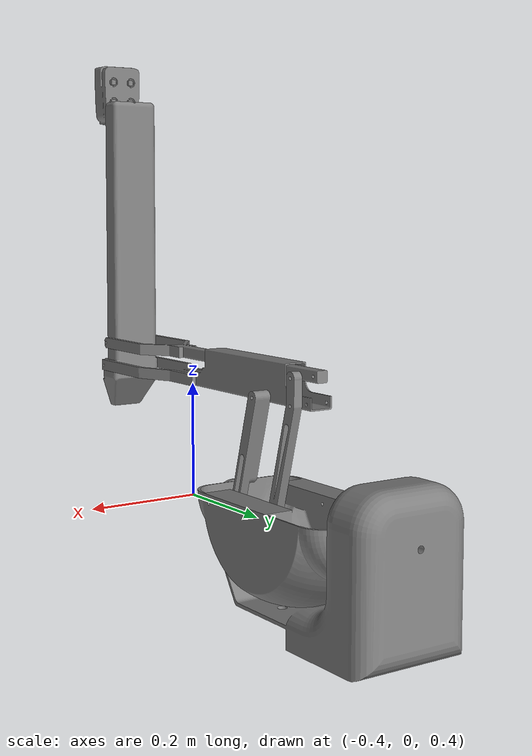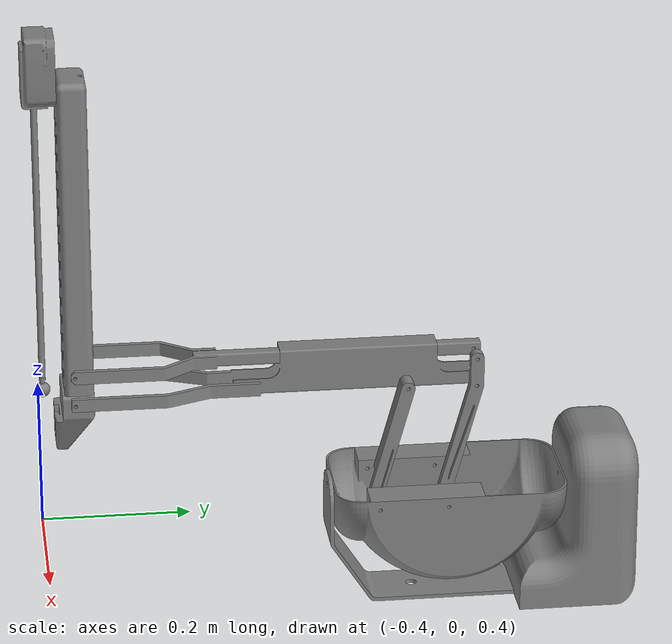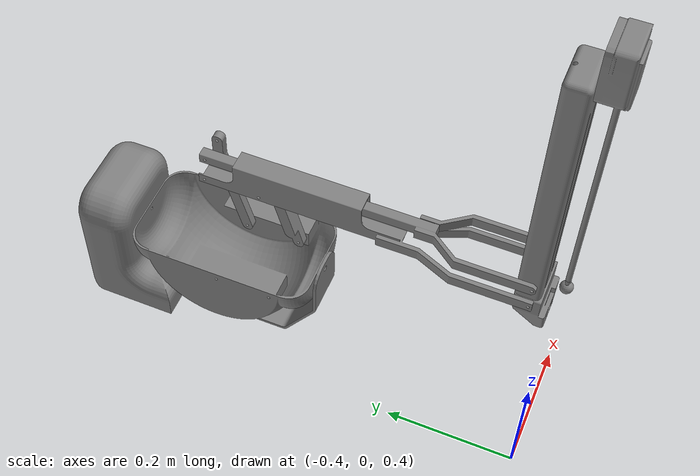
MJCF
<mujoco model="dvrk_psm">
    <compiler angle="radian" meshdir="/home/kallrax/Robotics/MedicalRobotics/dvrk_ws/src/dvrk_psm/meshes/psm/" />
    <size njmax="500" nconmax="100" />
    <option gravity="0 0 0"/>
    <asset>
        <mesh name="psm_base" file="psm_base.stl" />
        <mesh name="outer_yaw" file="outer_yaw.stl" />
        <mesh name="outer_pitch_back" file="outer_pitch_back.stl" />
        <mesh name="outer_pitch_front" file="outer_pitch_front.stl" />
        <mesh name="outer_pitch_bottom" file="outer_pitch_bottom.stl" />
        <mesh name="outer_pitch_top" file="outer_pitch_top.stl" />
        <mesh name="outer_insertion" file="outer_insertion.stl" />
        <mesh name="tool_main" file="tool_main.stl" />
        <mesh name="tool_wrist_link" file="tool_wrist_link.stl" />
        <mesh name="tool_wrist_shaft_link" file="tool_wrist_shaft_link.stl" />
        <mesh name="tool_wrist_sca_link" file="tool_wrist_sca_link.stl" />
        <mesh name="tool_wrist_sca_shaft_link" file="tool_wrist_sca_shaft_link.stl" />
        <mesh name="tool_wrist_sca_link_2" file="tool_wrist_sca_link_2.stl" />
    </asset>
    <worldbody>
        <geom pos="-0.289 0.40788 0.42121" quat="-0.707105 -0.707108 -2.57841e-06 -2.5784e-06" type="mesh" mesh="psm_base" />
        <body name="PSM1_outer_yaw_link" pos="-0.25 0 0.5" quat="-0.5 0.5 0.500002 0.499998">
            <inertial pos="0 0 0" mass="1" diaginertia="0.1 0.1 0.1" />
            <joint name="outer_yaw" pos="0 0 0.6" axis="0 0 1" limited="true" range="-1.5707 1.5707" />
            <geom pos="0.0125 0 0.5265" quat="-2.59734e-06 0.707105 0.707108 -2.59735e-06" type="mesh" contype="0" conaffinity="0" group="0" mesh="outer_yaw" />
            <body name="PSM1_outer_pitch_link" pos="0 0 0" quat="0.499998 -0.5 -0.5 -0.500002">
                <inertial pos="0 0 0" mass="1" diaginertia="0.1 0.1 0.1" />
                <joint name="outer_pitch" pos="0 0 0" axis="0 0 1" limited="true" range="-0.7854 0.7854" />
            </body>
            <body name="PSM1_outer_pitch_back_link" pos="0 0.0295 0.5185" quat="0.499998 -0.5 -0.5 -0.500002">
                <inertial pos="0 0 0" mass="1" diaginertia="0.1 0.1 0.1" />
                <joint name="outer_pitch_1" type="hinge" pos="0 0 0" axis="0 0 1" />
                <geom quat="0.990814 0 0 -0.135229" type="mesh" contype="0" conaffinity="0" group="0" mesh="outer_pitch_back" />
                <body name="PSM1_outer_pitch_bottom_link" pos="0.04178 0.15007 -0.0137">
                    <inertial pos="0 0 0" mass="1" diaginertia="0.1 0.1 0.1" />
                    <joint name="outer_pitch_3" pos="0 0 0" axis="0 0 1" />
                    <geom pos="0.009 0 0" quat="0.707105 0 -0.707108 0" type="mesh" contype="0" conaffinity="0" group="0" mesh="outer_pitch_bottom" />
                    <geom pos="0.009 0 0" quat="0.707105 0 -0.707108 0" type="mesh" mesh="outer_pitch_bottom" />
                    <body name="PSM1_outer_insertion_link" pos="-0.52 0 -0.0155">
                        <inertial pos="0 0 0" mass="1" diaginertia="0.1 0.1 0.1" />
                        <joint name="outer_pitch_5" pos="0 0 0" axis="0 0 1" />
                        <geom pos="0.02528 0.429 0" quat="0.499998 0.500002 -0.5 0.5" type="mesh" mesh="outer_insertion" />
                        <body name="PSM1_tool_main_link" pos="-0.04 0.4318 0" quat="0.707105 0.707108 0 0">
                            <inertial pos="0 0 0" mass="1" diaginertia="0.01 0.01 0.01" />
                            <joint name="outer_insertion" pos="0 0 0" axis="0 0 1" type="slide" limited="true" range="0 0.24" />
                            <geom pos="0 0 0.041" quat="0.707105 0 0 0.707108" type="mesh" mesh="tool_main" />
                            <body name="PSM1_tool_wrist_link" pos="0 0 0.4162">
                                <inertial pos="0 0 0" mass="2" diaginertia="0.02 0.02 0.02" />
                                <joint name="outer_roll" pos="0 0 0" axis="0 0 1" limited="true" range="-2.2689 2.2689" />
                                <geom pos="0 0 -0.0091" quat="0.707105 0 0 0.707108" type="mesh" mesh="tool_wrist_link" />
                                <geom pos="0 0.00401 0" quat="0.707105 0.707108 0 0" type="mesh" mesh="tool_wrist_shaft_link" />
                                <body name="PSM1_tool_wrist_sca_link" pos="0 0 0" quat="0.499998 -0.5 -0.5 -0.500002">
                                    <inertial pos="0 0 0" mass="1" diaginertia="0.01 0.01 0.01" />
                                    <joint name="outer_wrist_pitch" pos="0 0 0" axis="0 0 1" limited="true" range="-1.5707 1.5707" />
                                    <geom pos="0.0051 0.0032 0" quat="-2.59734e-06 -2.59735e-06 0.707105 -0.707108" type="mesh" contype="0" conaffinity="0" group="0" mesh="tool_wrist_sca_link" />
                                    <geom pos="0.0051 0.0032 0" quat="-2.59734e-06 -2.59735e-06 0.707105 -0.707108" type="mesh" mesh="tool_wrist_sca_link" />
                                    <body name="PSM1_tool_wrist_sca_shaft_link" pos="0.0091 0 0" quat="0.499998 -0.5 -0.5 -0.500002">
                                        <site name="endeff" pos="0 0 0" size="0.01"/>
                                        <inertial pos="0 0 0" mass="1" diaginertia="0.01 0.01 0.01" />
                                        <joint name="outer_wrist_yaw" pos="0 0 0" axis="0 0 1" limited="true" range="-1.3963 1.3963" />
                                        <geom pos="0 -0.0002 -0.0025" type="mesh" mesh="tool_wrist_sca_shaft_link" />
                                        <body name="PSM1_tool_wrist_sca_ee_link_0" pos="0 0 0">
                                            <inertial pos="0 0 0" mass="1" diaginertia="0.01 0.01 0.01" />
                                            <joint name="jaw" pos="0 0 0" axis="0 0 1" limited="true" range="0 1.5707" />
                                            <geom size="5e-05 5e-06 5e-06" type="box" contype="0" conaffinity="0" group="0" />
                                        </body>
                                        <body name="PSM1_tool_wrist_sca_ee_link_1" pos="0 0 0">
                                            <inertial pos="0 0 0" mass="1" diaginertia="0.01 0.01 0.01" />
                                            <joint name="jaw_mimic_1" pos="0 0 0" axis="0 0 1" limited="true" range="-1.5707 1.5707" />
                                            <geom type="mesh" mesh="tool_wrist_sca_link_2" />
                                        </body>
                                        <body name="PSM1_tool_wrist_sca_ee_link_2" pos="0 0 0">
                                            <inertial pos="0 0 0" mass="1" diaginertia="0.01 0.01 0.01" />
                                            <joint name="jaw_mimic_2" pos="0 0 0" axis="0 0 1" limited="true" range="-1.5707 1.5707" />
                                            <geom quat="-0.00500365 0 0.999987 0" type="mesh" mesh="tool_wrist_sca_link_2" />
                                        </body>
                                    </body>
                                </body>
                            </body>
                        </body>
                    </body>
                </body>
                <body name="PSM1_outer_pitch_top_link" pos="0.04209 0.18695 -0.02412">
                    <inertial pos="0 0 0" mass="1" diaginertia="0.1 0.1 0.1" />
                    <joint name="outer_pitch_4" pos="0 0 0" axis="0 0 1" />
                    <geom pos="0.009 0 0" quat="0.707105 0 -0.707108 0" type="mesh" contype="0" conaffinity="0" group="0" mesh="outer_pitch_top" />
                </body>
            </body>
            <body name="PSM1_outer_pitch_front_link" pos="0 0.0295 0.4285" quat="0.499998 -0.5 -0.5 -0.500002">
                <inertial pos="0 0 0" mass="1" diaginertia="0.1 0.1 0.1" />

                <joint name="outer_pitch_2" pos="0 0 0" axis="0 0 1"/>
                <geom quat="0.990814 0 0 -0.135229" type="mesh" contype="0" conaffinity="0" group="0" mesh="outer_pitch_front" />
            </body>
        </body>
    </worldbody>
    <equality>
        <connect name="insertiton_top_link" active="true" body1="PSM1_outer_insertion_link" body2="PSM1_outer_pitch_top_link" anchor="0 0.04 -0.0"/>
        <connect name="front_bottom_link" active="true" body1="PSM1_outer_pitch_front_link" body2="PSM1_outer_pitch_bottom_link" anchor="0.04178 0.15007 -0.0137"/>
        <joint name="1" active="true" joint1="outer_pitch" joint2="outer_pitch_1" polycoef="0 1 0 0 0"/>
        <joint name="2" active="true" joint1="outer_pitch" joint2="outer_pitch_2" polycoef="0 1 0 0 0"/>
        <joint name="3" active="true" joint1="outer_pitch" joint2="outer_pitch_3" polycoef="0 -1 0 0 0"/>
        <joint name="4" active="true" joint1="outer_pitch" joint2="outer_pitch_4" polycoef="0 -1 0 0 0"/>
        <joint name="5" active="true" joint1="outer_pitch" joint2="outer_pitch_5" polycoef="0 1 0 0 0"/>
    </equality>
</mujoco>
